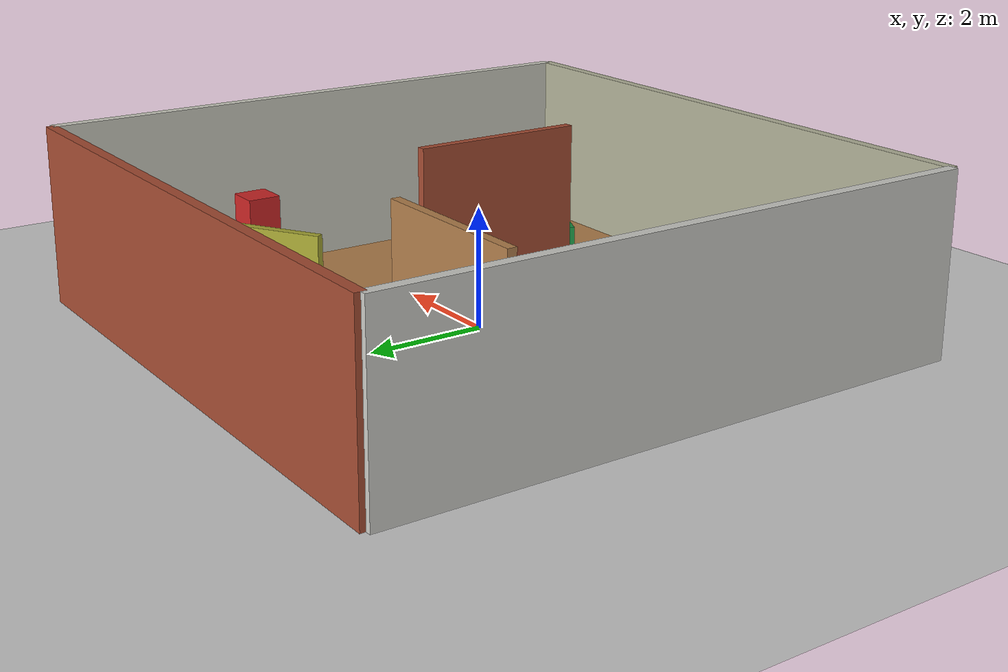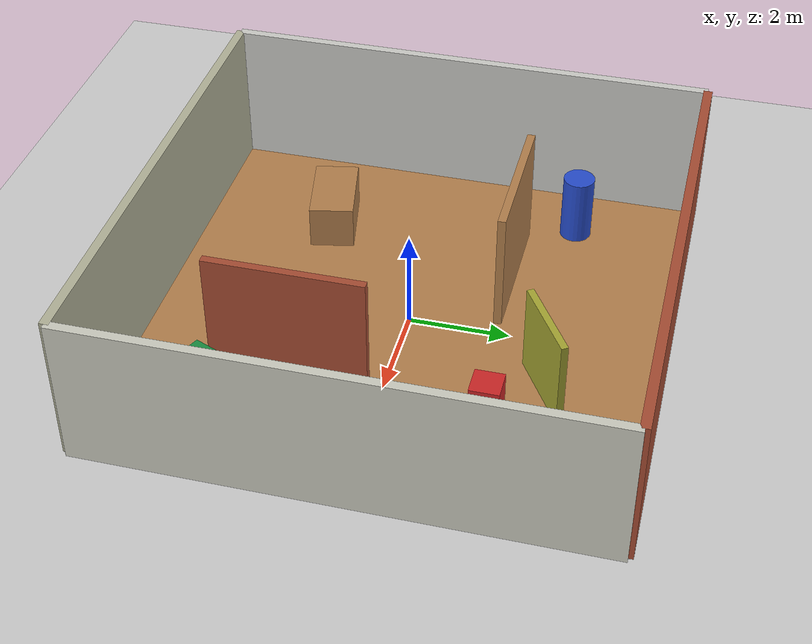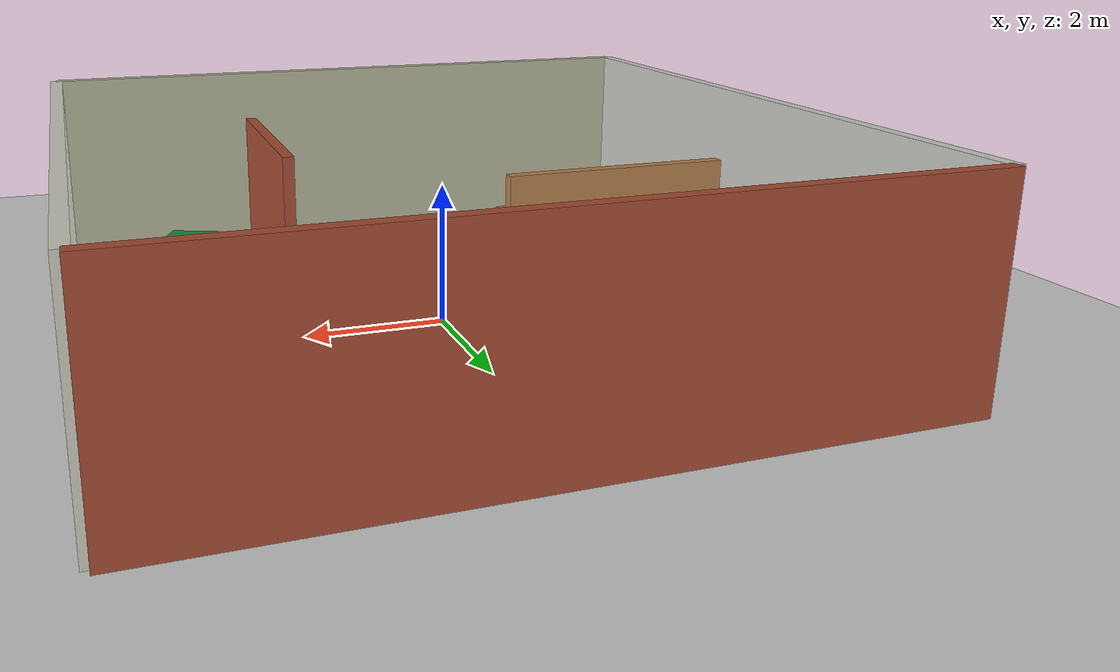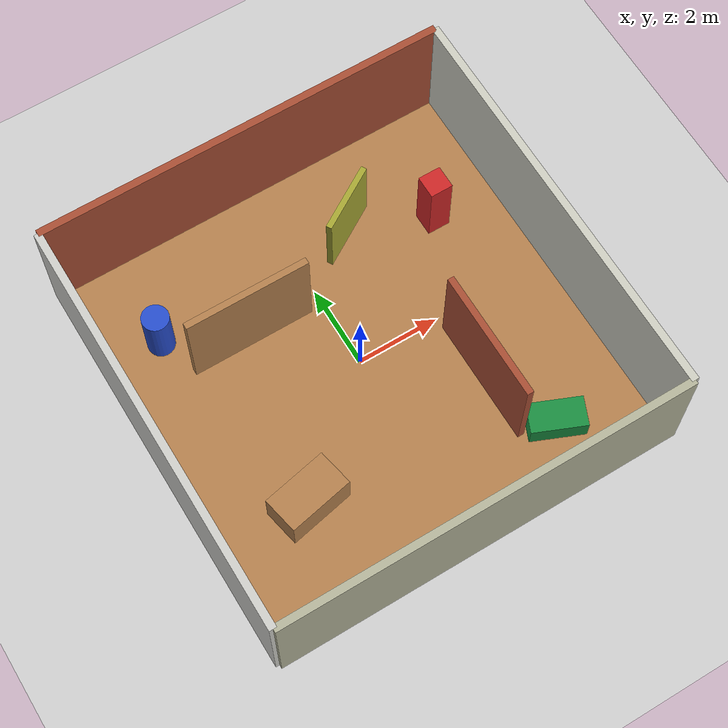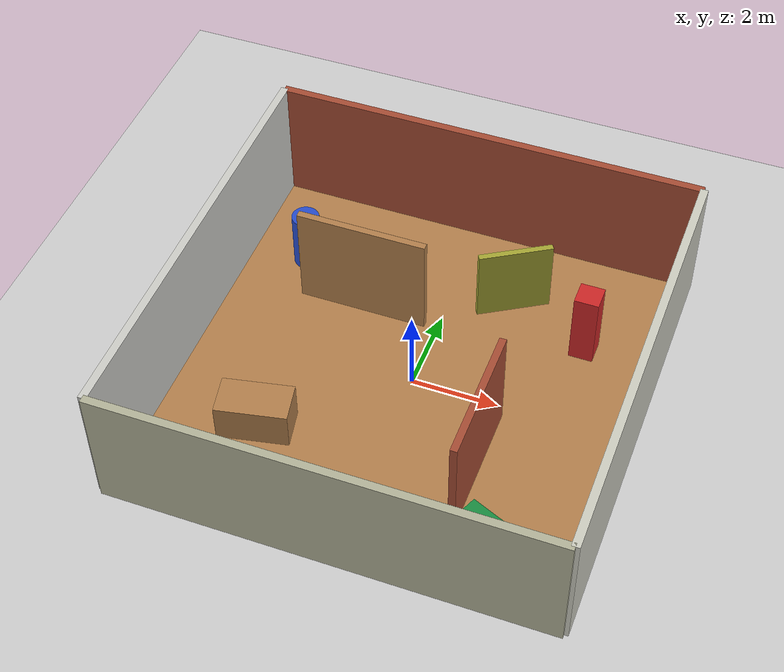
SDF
<?xml version="1.0" ?>
<sdf version="1.6">
  <world name="scenario_2_feature_room">
    <include><uri>model://sun</uri></include>
    <include><uri>model://ground_plane</uri></include>

    <model name="floor"><static>true</static><pose>0 0 0.005 0 0 0</pose><link name="link">
      <collision name="c"><geometry><box><size>10 10 0.01</size></box></geometry></collision>
      <visual name="v"><geometry><box><size>10 10 0.01</size></box></geometry><material><script><uri>file://media/materials/scripts/gazebo.material</uri><name>Gazebo/Wood</name></script></material></visual>
    </link></model>

    <model name="outer_walls"><static>true</static>
      <link name="north"><pose>0 5 1.5 0 0 0</pose><collision name="c"><geometry><box><size>10 0.18 3</size></box></geometry></collision><visual name="v"><geometry><box><size>10 0.18 3</size></box></geometry><material><script><uri>file://media/materials/scripts/gazebo.material</uri><name>Gazebo/Bricks</name></script></material></visual></link>
      <link name="south"><pose>0 -5 1.5 0 0 0</pose><collision name="c"><geometry><box><size>10 0.18 3</size></box></geometry></collision><visual name="v"><geometry><box><size>10 0.18 3</size></box></geometry><material><script><uri>file://media/materials/scripts/gazebo.material</uri><name>Gazebo/Residential</name></script></material></visual></link>
      <link name="east"><pose>5 0 1.5 0 0 0</pose><collision name="c"><geometry><box><size>0.18 10 3</size></box></geometry></collision><visual name="v"><geometry><box><size>0.18 10 3</size></box></geometry><material><script><uri>file://media/materials/scripts/gazebo.material</uri><name>Gazebo/PaintedWall</name></script></material></visual></link>
      <link name="west"><pose>-5 0 1.5 0 0 0</pose><collision name="c"><geometry><box><size>0.18 10 3</size></box></geometry></collision><visual name="v"><geometry><box><size>0.18 10 3</size></box></geometry><material><script><uri>file://media/materials/scripts/gazebo.material</uri><name>Gazebo/CeilingTiled</name></script></material></visual></link>
    </model>

    <model name="partial_walls"><static>true</static>
      <link name="partition_a"><pose>-1.8 1.7 1.25 0 0 0</pose><collision name="c"><geometry><box><size>3.0 0.16 2.5</size></box></geometry></collision><visual name="v"><geometry><box><size>3.0 0.16 2.5</size></box></geometry><material><script><uri>file://media/materials/scripts/gazebo.material</uri><name>Gazebo/Wood</name></script></material></visual></link>
      <link name="partition_b"><pose>2.1 -1.8 1.25 0 0 1.5708</pose><collision name="c"><geometry><box><size>3.1 0.16 2.5</size></box></geometry></collision><visual name="v"><geometry><box><size>3.1 0.16 2.5</size></box></geometry><material><script><uri>file://media/materials/scripts/gazebo.material</uri><name>Gazebo/Bricks</name></script></material></visual></link>
      <link name="short_panel"><pose>1.4 2.9 0.9 0 0 0.55</pose><collision name="c"><geometry><box><size>1.7 0.14 1.8</size></box></geometry></collision><visual name="v"><geometry><box><size>1.7 0.14 1.8</size></box></geometry><material><ambient>0.65 0.65 0.2 1</ambient><diffuse>0.65 0.65 0.2 1</diffuse></material></visual></link>
    </model>

    <model name="objects"><static>true</static>
      <link name="table"><pose>-2.7 -2.3 0.45 0 0 0.2</pose><collision name="c"><geometry><box><size>1.6 0.9 0.9</size></box></geometry></collision><visual name="v"><geometry><box><size>1.6 0.9 0.9</size></box></geometry><material><script><uri>file://media/materials/scripts/gazebo.material</uri><name>Gazebo/Wood</name></script></material></visual></link>
      <link name="tall_red"><pose>3.3 2.2 0.9 0 0 0</pose><collision name="c"><geometry><box><size>0.55 0.55 1.8</size></box></geometry></collision><visual name="v"><geometry><box><size>0.55 0.55 1.8</size></box></geometry><material><script><uri>file://media/materials/scripts/gazebo.material</uri><name>Gazebo/Red</name></script></material></visual></link>
      <link name="blue_cylinder"><pose>-3.6 2.7 0.7 0 0 0</pose><collision name="c"><geometry><cylinder><radius>0.32</radius><length>1.4</length></cylinder></geometry></collision><visual name="v"><geometry><cylinder><radius>0.32</radius><length>1.4</length></cylinder></geometry><material><script><uri>file://media/materials/scripts/gazebo.material</uri><name>Gazebo/Blue</name></script></material></visual></link>
      <link name="low_block"><pose>2.9 -3.5 0.28 0 0 -0.4</pose><collision name="c"><geometry><box><size>1.3 0.7 0.55</size></box></geometry></collision><visual name="v"><geometry><box><size>1.3 0.7 0.55</size></box></geometry><material><ambient>0.1 0.55 0.25 1</ambient><diffuse>0.1 0.55 0.25 1</diffuse></material></visual></link>
    </model>
  </world>
</sdf>
